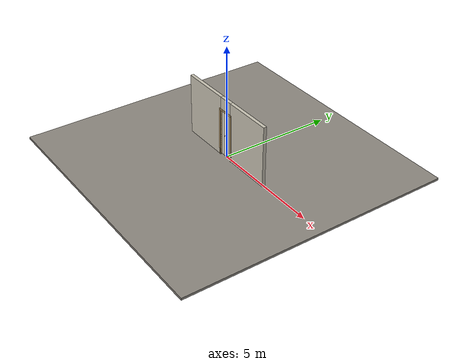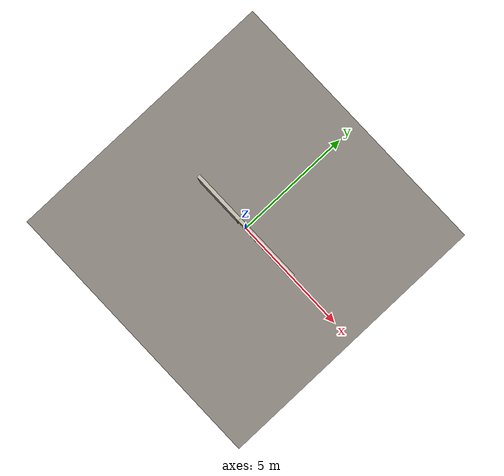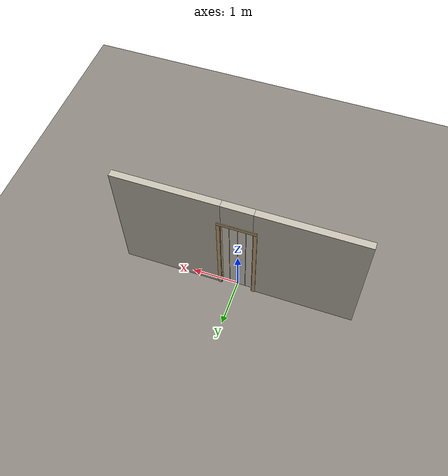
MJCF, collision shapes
<?xml version="1.0" ?>
<mujoco model="db0059_bifold_full">
  <compiler angle="radian" meshdir="../../hardware" texturedir="../../textures" autolimits="true" inertiafromgeom="false"/>
  <option timestep="0.002" integrator="implicitfast" cone="elliptic" impratio="10" noslip_iterations="3">
    <flag multiccd="enable"/>
  </option>
  <size memory="16M"/>
  <default>
    <geom condim="4" solref="0.005 1" solimp="0.95 0.99 0.001"/>
    <joint solreflimit="0.005 1" solimplimit="0.95 0.99 0.001"/>
    <tendon solreflimit="0.005 1"/>
    <equality solref="0.002 1"/>
  </default>
  <visual>
    <headlight ambient="0.4 0.4 0.4" diffuse="0.7 0.7 0.7" specular="0.2 0.2 0.2"/>
    <quality shadowsize="4096"/>
    <map znear="0.01" zfar="60"/>
  </visual>
  <asset>
    <mesh name="knob_13f7a2a65f" file="knob_13f7a2a65f.obj"/>
    <material name="mat_floor" rgba="0.55 0.53 0.5 1" specular="0.2" shininess="0.15" reflectance="0"/>
    <material name="mat_wall" rgba="0.78 0.76 0.7 1" specular="0.2" shininess="0.1" reflectance="0"/>
    <material name="mat_frame" rgba="0.82 0.7 0.5 1" specular="0.2" shininess="0.45" reflectance="0"/>
    <material name="mat_track" rgba="0.8 0.81 0.83 1" specular="0.8" shininess="0.6" reflectance="0.4"/>
    <material name="mat_hinge" rgba="0.65 0.66 0.68 1" specular="0.74" shininess="0.5" reflectance="0.36"/>
    <material name="mat_panel_0_0" rgba="0.9 0.88 0.82 1" specular="0.2" shininess="0.46" reflectance="0"/>
    <material name="mat_panel_0_0_louver" rgba="0.765 0.748 0.697 1" specular="0.2" shininess="0.4" reflectance="0"/>
    <material name="mat_panel_0_1" rgba="0.9 0.88 0.82 1" specular="0.2" shininess="0.46" reflectance="0"/>
    <material name="mat_panel_0_1_louver" rgba="0.765 0.748 0.697 1" specular="0.2" shininess="0.4" reflectance="0"/>
    <material name="mat_op_nickel_satin" rgba="0.72 0.7 0.66 1" specular="0.8" shininess="0.65" reflectance="0.4"/>
    <material name="mat_panel_1_0" rgba="0.9 0.88 0.82 1" specular="0.2" shininess="0.46" reflectance="0"/>
    <material name="mat_panel_1_0_louver" rgba="0.765 0.748 0.697 1" specular="0.2" shininess="0.4" reflectance="0"/>
    <material name="mat_panel_1_1" rgba="0.9 0.88 0.82 1" specular="0.2" shininess="0.46" reflectance="0"/>
    <material name="mat_panel_1_1_louver" rgba="0.765 0.748 0.697 1" specular="0.2" shininess="0.4" reflectance="0"/>
    <texture name="skybox" type="skybox" builtin="gradient" rgb1="0.6 0.7 0.85" rgb2="0.9 0.92 0.95" width="256" height="256"/>
  </asset>
  <worldbody>
    <light name="sun" pos="1.5 -2.5 4" dir="-0.3 0.5 -0.8" directional="true" diffuse="0.8 0.8 0.8" specular="0.3 0.3 0.3" castshadow="true"/>
    <light name="fill" pos="-1.5 2.5 3" dir="0.3 -0.5 -0.7" directional="true" diffuse="0.35 0.35 0.4" castshadow="false"/>
    <camera name="robot_view" pos="0 -2.581563 1.766338" xyaxes="1 0 0 0 0.26963 0.962964" fovy="52"/>
    <camera name="far_view" pos="0 2.581563 1.766338" xyaxes="-1 0 0 0 -0.26963 0.962964" fovy="52"/>
    <camera name="iso" pos="1.961988 -2.168513 2.179388" xyaxes="0.741536 0.670913 0 -0.242917 0.268487 0.932151" fovy="46"/>
    <camera name="detail_handle" pos="0.122925 -0.8475 1.28" xyaxes="0.97561 0.219512 0 -0.070934 0.315262 0.94635" fovy="38"/>
    <geom name="floor" type="box" size="6 6 0.05" pos="0 0 -0.05" material="mat_floor" group="0" contype="1" conaffinity="1" friction="0.8 0.005 0.0001" density="2400"/>
    <geom name="wall_left" type="box" size="1.09 0.0725 1.35" pos="-1.41 0 1.35" material="mat_wall" group="0" contype="1" conaffinity="1" friction="0.6 0.005 0.0001" density="800"/>
    <geom name="wall_right" type="box" size="1.09 0.0725 1.35" pos="1.41 0 1.35" material="mat_wall" group="0" contype="1" conaffinity="1" friction="0.6 0.005 0.0001" density="800"/>
    <geom name="wall_header" type="box" size="0.32 0.0725 0.3065" pos="0 0 2.3935" material="mat_wall" group="0" contype="1" conaffinity="1" friction="0.6 0.005 0.0001" density="800"/>
    <geom name="jamb_hinge" type="box" size="0.0095 0.0725 1.0435" pos="-0.3295 0 1.0435" material="mat_frame" group="0" contype="1" conaffinity="1" friction="0.6 0.005 0.0001" density="400"/>
    <geom name="jamb_strike" type="box" size="0.0095 0.0725 1.0435" pos="0.3295 0 1.0435" material="mat_frame" group="0" contype="1" conaffinity="1" friction="0.6 0.005 0.0001" density="400"/>
    <geom name="stud_strike" type="box" size="0.015 0.0725 1.0435" pos="0.354 0 1.0435" material="mat_wall" group="0" contype="1" conaffinity="1" friction="0.6 0.005 0.0001" density="500"/>
    <geom name="jamb_head" type="box" size="0.354 0.0725 0.0095" pos="0.015 0 2.0965" material="mat_frame" group="0" contype="1" conaffinity="1" friction="0.6 0.005 0.0001" density="400"/>
    <geom name="head_stud" type="box" size="0.354 0.0725 0.015" pos="0.015 0 2.121" material="mat_wall" group="0" contype="1" conaffinity="1" friction="0.6 0.005 0.0001" density="500"/>
    <geom name="casing_l_n" type="box" size="0.035 0.008 1.053" pos="-0.369 -0.0805 1.0435" material="mat_frame" group="2" contype="0" conaffinity="0" density="400"/>
    <geom name="casing_r_n" type="box" size="0.035 0.008 1.053" pos="0.369 -0.0805 1.0435" material="mat_frame" group="2" contype="0" conaffinity="0" density="400"/>
    <geom name="casing_h_n" type="box" size="0.404 0.008 0.035" pos="0 -0.0805 2.136" material="mat_frame" group="2" contype="0" conaffinity="0" density="400"/>
    <geom name="casing_l_p" type="box" size="0.035 0.008 1.053" pos="-0.369 0.0805 1.0435" material="mat_frame" group="2" contype="0" conaffinity="0" density="400"/>
    <geom name="casing_r_p" type="box" size="0.035 0.008 1.053" pos="0.369 0.0805 1.0435" material="mat_frame" group="2" contype="0" conaffinity="0" density="400"/>
    <geom name="casing_h_p" type="box" size="0.404 0.008 0.035" pos="0 0.0805 2.136" material="mat_frame" group="2" contype="0" conaffinity="0" density="400"/>
    <geom name="fold_track" type="box" size="0.32 0.02 0.015" pos="0 0 2.072" material="mat_track" group="1" contype="0" conaffinity="0" density="2700"/>
    <site name="approach_point" pos="0 -1.5 0" quat="1 0 0 0" size="0.05" rgba="0.2 0.9 0.2 0.5" group="4"/>
    <site name="goal_point" pos="0 1.5 0" quat="1 0 0 0" size="0.05" rgba="0.2 0.9 0.2 0.5" group="4"/>
    <site name="door_plane_center" pos="0 0 1.0435" quat="1 0 0 0" size="0.02" rgba="0.2 0.9 0.2 0.5" group="4"/>
    <body name="panel_0_0" pos="-0.32 0 0">
      <inertial pos="0.078703 0 1.050971" mass="2.145073" quat="0.500463 0.500463 0.499537 -0.499537" diaginertia="0.003791067 0.759519003 0.762877548"/>
      <joint name="panel_0_0_hinge" type="hinge" axis="0 0 -1" pos="0.035 0 0" limited="true" range="0 1.48353" damping="0.647388" frictionloss="0.936494" armature="0.02"/>
      <geom name="panel_0_0_slab" type="box" size="0.070645 0.0175 1.016" pos="0.079355 0 1.036" material="mat_panel_0_0" group="0" contype="1" conaffinity="1" friction="0.35 0.005 0.0001" density="1"/>
      <geom name="panel_0_0_louver_0" type="box" size="0.031084 0.002 0.026984" pos="0.079355 0 1.102339" quat="0.953717 0.300706 0 0" material="mat_panel_0_0_louver" group="1" contype="0" conaffinity="0" density="1"/>
      <geom name="panel_0_0_louver_1" type="box" size="0.031084 0.002 0.026984" pos="0.079355 0 1.153736" quat="0.953717 0.300706 0 0" material="mat_panel_0_0_louver" group="1" contype="0" conaffinity="0" density="1"/>
      <geom name="panel_0_0_louver_2" type="box" size="0.031084 0.002 0.026984" pos="0.079355 0 1.205134" quat="0.953717 0.300706 0 0" material="mat_panel_0_0_louver" group="1" contype="0" conaffinity="0" density="1"/>
      <geom name="panel_0_0_louver_3" type="box" size="0.031084 0.002 0.026984" pos="0.079355 0 1.256532" quat="0.953717 0.300706 0 0" material="mat_panel_0_0_louver" group="1" contype="0" conaffinity="0" density="1"/>
      <geom name="panel_0_0_louver_4" type="box" size="0.031084 0.002 0.026984" pos="0.079355 0 1.307929" quat="0.953717 0.300706 0 0" material="mat_panel_0_0_louver" group="1" contype="0" conaffinity="0" density="1"/>
      <geom name="panel_0_0_louver_5" type="box" size="0.031084 0.002 0.026984" pos="0.079355 0 1.359327" quat="0.953717 0.300706 0 0" material="mat_panel_0_0_louver" group="1" contype="0" conaffinity="0" density="1"/>
      <geom name="panel_0_0_louver_6" type="box" size="0.031084 0.002 0.026984" pos="0.079355 0 1.410725" quat="0.953717 0.300706 0 0" material="mat_panel_0_0_louver" group="1" contype="0" conaffinity="0" density="1"/>
      <geom name="panel_0_0_louver_7" type="box" size="0.031084 0.002 0.026984" pos="0.079355 0 1.462122" quat="0.953717 0.300706 0 0" material="mat_panel_0_0_louver" group="1" contype="0" conaffinity="0" density="1"/>
      <geom name="panel_0_0_louver_8" type="box" size="0.031084 0.002 0.026984" pos="0.079355 0 1.51352" quat="0.953717 0.300706 0 0" material="mat_panel_0_0_louver" group="1" contype="0" conaffinity="0" density="1"/>
      <geom name="panel_0_0_louver_9" type="box" size="0.031084 0.002 0.026984" pos="0.079355 0 1.564918" quat="0.953717 0.300706 0 0" material="mat_panel_0_0_louver" group="1" contype="0" conaffinity="0" density="1"/>
      <geom name="panel_0_0_louver_10" type="box" size="0.031084 0.002 0.026984" pos="0.079355 0 1.616315" quat="0.953717 0.300706 0 0" material="mat_panel_0_0_louver" group="1" contype="0" conaffinity="0" density="1"/>
      <geom name="panel_0_0_louver_11" type="box" size="0.031084 0.002 0.026984" pos="0.079355 0 1.667713" quat="0.953717 0.300706 0 0" material="mat_panel_0_0_louver" group="1" contype="0" conaffinity="0" density="1"/>
      <geom name="panel_0_0_louver_12" type="box" size="0.031084 0.002 0.026984" pos="0.079355 0 1.719111" quat="0.953717 0.300706 0 0" material="mat_panel_0_0_louver" group="1" contype="0" conaffinity="0" density="1"/>
      <geom name="panel_0_0_louver_13" type="box" size="0.031084 0.002 0.026984" pos="0.079355 0 1.770508" quat="0.953717 0.300706 0 0" material="mat_panel_0_0_louver" group="1" contype="0" conaffinity="0" density="1"/>
      <geom name="panel_0_0_louver_14" type="box" size="0.031084 0.002 0.026984" pos="0.079355 0 1.821906" quat="0.953717 0.300706 0 0" material="mat_panel_0_0_louver" group="1" contype="0" conaffinity="0" density="1"/>
      <geom name="panel_0_0_louver_15" type="box" size="0.031084 0.002 0.026984" pos="0.079355 0 1.873304" quat="0.953717 0.300706 0 0" material="mat_panel_0_0_louver" group="1" contype="0" conaffinity="0" density="1"/>
      <geom name="panel_0_0_louver_16" type="box" size="0.031084 0.002 0.026984" pos="0.079355 0 1.924701" quat="0.953717 0.300706 0 0" material="mat_panel_0_0_louver" group="1" contype="0" conaffinity="0" density="1"/>
      <geom name="panel_0_0_pivot_pin" type="cylinder" size="0.008 0.0105" pos="0.035 0 2.0525" material="mat_hinge" group="1" contype="0" conaffinity="0" density="7850"/>
      <body name="panel_0_1" pos="0.152 0 0">
        <inertial pos="0.014841 0.010568 1.031551" mass="2.448742" quat="0.596594 0.378605 -0.597198 0.379591" diaginertia="0.004344929 0.722160542 0.726364202"/>
        <joint name="panel_0_1_hinge" type="hinge" axis="0 0 -1" pos="0 0.0175 0" limited="true" range="-3.141593 0" damping="0.2" frictionloss="0.1" armature="0.005"/>
        <geom name="panel_0_1_slab" type="box" size="0.079462 0.0175 1.016" pos="0.081462 0 1.036" material="mat_panel_0_1" group="0" contype="1" conaffinity="1" friction="0.35 0.005 0.0001" density="1"/>
        <geom name="panel_0_1_louver_0" type="box" size="0.034963 0.002 0.026984" pos="0.081462 0 1.102339" quat="0.953717 0.300706 0 0" material="mat_panel_0_1_louver" group="1" contype="0" conaffinity="0" density="1"/>
        <geom name="panel_0_1_louver_1" type="box" size="0.034963 0.002 0.026984" pos="0.081462 0 1.153736" quat="0.953717 0.300706 0 0" material="mat_panel_0_1_louver" group="1" contype="0" conaffinity="0" density="1"/>
        <geom name="panel_0_1_louver_2" type="box" size="0.034963 0.002 0.026984" pos="0.081462 0 1.205134" quat="0.953717 0.300706 0 0" material="mat_panel_0_1_louver" group="1" contype="0" conaffinity="0" density="1"/>
        <geom name="panel_0_1_louver_3" type="box" size="0.034963 0.002 0.026984" pos="0.081462 0 1.256532" quat="0.953717 0.300706 0 0" material="mat_panel_0_1_louver" group="1" contype="0" conaffinity="0" density="1"/>
        <geom name="panel_0_1_louver_4" type="box" size="0.034963 0.002 0.026984" pos="0.081462 0 1.307929" quat="0.953717 0.300706 0 0" material="mat_panel_0_1_louver" group="1" contype="0" conaffinity="0" density="1"/>
        <geom name="panel_0_1_louver_5" type="box" size="0.034963 0.002 0.026984" pos="0.081462 0 1.359327" quat="0.953717 0.300706 0 0" material="mat_panel_0_1_louver" group="1" contype="0" conaffinity="0" density="1"/>
        <geom name="panel_0_1_louver_6" type="box" size="0.034963 0.002 0.026984" pos="0.081462 0 1.410725" quat="0.953717 0.300706 0 0" material="mat_panel_0_1_louver" group="1" contype="0" conaffinity="0" density="1"/>
        <geom name="panel_0_1_louver_7" type="box" size="0.034963 0.002 0.026984" pos="0.081462 0 1.462122" quat="0.953717 0.300706 0 0" material="mat_panel_0_1_louver" group="1" contype="0" conaffinity="0" density="1"/>
        <geom name="panel_0_1_louver_8" type="box" size="0.034963 0.002 0.026984" pos="0.081462 0 1.51352" quat="0.953717 0.300706 0 0" material="mat_panel_0_1_louver" group="1" contype="0" conaffinity="0" density="1"/>
        <geom name="panel_0_1_louver_9" type="box" size="0.034963 0.002 0.026984" pos="0.081462 0 1.564918" quat="0.953717 0.300706 0 0" material="mat_panel_0_1_louver" group="1" contype="0" conaffinity="0" density="1"/>
        <geom name="panel_0_1_louver_10" type="box" size="0.034963 0.002 0.026984" pos="0.081462 0 1.616315" quat="0.953717 0.300706 0 0" material="mat_panel_0_1_louver" group="1" contype="0" conaffinity="0" density="1"/>
        <geom name="panel_0_1_louver_11" type="box" size="0.034963 0.002 0.026984" pos="0.081462 0 1.667713" quat="0.953717 0.300706 0 0" material="mat_panel_0_1_louver" group="1" contype="0" conaffinity="0" density="1"/>
        <geom name="panel_0_1_louver_12" type="box" size="0.034963 0.002 0.026984" pos="0.081462 0 1.719111" quat="0.953717 0.300706 0 0" material="mat_panel_0_1_louver" group="1" contype="0" conaffinity="0" density="1"/>
        <geom name="panel_0_1_louver_13" type="box" size="0.034963 0.002 0.026984" pos="0.081462 0 1.770508" quat="0.953717 0.300706 0 0" material="mat_panel_0_1_louver" group="1" contype="0" conaffinity="0" density="1"/>
        <geom name="panel_0_1_louver_14" type="box" size="0.034963 0.002 0.026984" pos="0.081462 0 1.821906" quat="0.953717 0.300706 0 0" material="mat_panel_0_1_louver" group="1" contype="0" conaffinity="0" density="1"/>
        <geom name="panel_0_1_louver_15" type="box" size="0.034963 0.002 0.026984" pos="0.081462 0 1.873304" quat="0.953717 0.300706 0 0" material="mat_panel_0_1_louver" group="1" contype="0" conaffinity="0" density="1"/>
        <geom name="panel_0_1_louver_16" type="box" size="0.034963 0.002 0.026984" pos="0.081462 0 1.924701" quat="0.953717 0.300706 0 0" material="mat_panel_0_1_louver" group="1" contype="0" conaffinity="0" density="1"/>
        <geom name="panel_0_1_knuckle" type="cylinder" size="0.0045 1.006" pos="0 0.0175 1.036" material="mat_hinge" group="1" contype="0" conaffinity="0" density="7850"/>
        <geom name="panel_0_1_knob" type="mesh" mesh="knob_13f7a2a65f" pos="0.110925 -0.0175 1" quat="0.707107 0.707107 0 0" material="mat_op_nickel_satin" group="1" contype="0" conaffinity="0" density="3000"/>
        <geom name="panel_0_1_knob_col" type="sphere" size="0.016" pos="0.110925 -0.0475 1" material="mat_op_nickel_satin" group="0" contype="1" conaffinity="1" friction="0.6 0.005 0.0001" density="3000"/>
        <geom name="panel_0_1_knob_rose" type="cylinder" size="0.022 0.005" pos="0.110925 -0.0225 1" quat="0.707107 -0.707107 0 0" material="mat_op_nickel_satin" group="1" contype="0" conaffinity="0" density="3000"/>
        <site name="panel_0_1_grip" pos="0.110925 -0.0475 1" quat="1 0 0 0" size="0.012" rgba="0.2 0.9 0.2 0.5" group="4"/>
      </body>
    </body>
    <body name="panel_1_0" pos="0.32 0 0">
      <inertial pos="-0.078703 0 1.050971" mass="2.145073" quat="0.500463 -0.500463 -0.499537 -0.499537" diaginertia="0.003791067 0.759519003 0.762877548"/>
      <joint name="panel_1_0_hinge" type="hinge" axis="0 0 1" pos="-0.035 0 0" limited="true" range="0 1.48353" damping="0.647388" frictionloss="0.936494" armature="0.02"/>
      <geom name="panel_1_0_slab" type="box" size="0.070645 0.0175 1.016" pos="-0.079355 0 1.036" material="mat_panel_1_0" group="0" contype="1" conaffinity="1" friction="0.35 0.005 0.0001" density="1"/>
      <geom name="panel_1_0_louver_0" type="box" size="0.031084 0.002 0.026984" pos="-0.079355 0 1.102339" quat="0.953717 0.300706 0 0" material="mat_panel_1_0_louver" group="1" contype="0" conaffinity="0" density="1"/>
      <geom name="panel_1_0_louver_1" type="box" size="0.031084 0.002 0.026984" pos="-0.079355 0 1.153736" quat="0.953717 0.300706 0 0" material="mat_panel_1_0_louver" group="1" contype="0" conaffinity="0" density="1"/>
      <geom name="panel_1_0_louver_2" type="box" size="0.031084 0.002 0.026984" pos="-0.079355 0 1.205134" quat="0.953717 0.300706 0 0" material="mat_panel_1_0_louver" group="1" contype="0" conaffinity="0" density="1"/>
      <geom name="panel_1_0_louver_3" type="box" size="0.031084 0.002 0.026984" pos="-0.079355 0 1.256532" quat="0.953717 0.300706 0 0" material="mat_panel_1_0_louver" group="1" contype="0" conaffinity="0" density="1"/>
      <geom name="panel_1_0_louver_4" type="box" size="0.031084 0.002 0.026984" pos="-0.079355 0 1.307929" quat="0.953717 0.300706 0 0" material="mat_panel_1_0_louver" group="1" contype="0" conaffinity="0" density="1"/>
      <geom name="panel_1_0_louver_5" type="box" size="0.031084 0.002 0.026984" pos="-0.079355 0 1.359327" quat="0.953717 0.300706 0 0" material="mat_panel_1_0_louver" group="1" contype="0" conaffinity="0" density="1"/>
      <geom name="panel_1_0_louver_6" type="box" size="0.031084 0.002 0.026984" pos="-0.079355 0 1.410725" quat="0.953717 0.300706 0 0" material="mat_panel_1_0_louver" group="1" contype="0" conaffinity="0" density="1"/>
      <geom name="panel_1_0_louver_7" type="box" size="0.031084 0.002 0.026984" pos="-0.079355 0 1.462122" quat="0.953717 0.300706 0 0" material="mat_panel_1_0_louver" group="1" contype="0" conaffinity="0" density="1"/>
      <geom name="panel_1_0_louver_8" type="box" size="0.031084 0.002 0.026984" pos="-0.079355 0 1.51352" quat="0.953717 0.300706 0 0" material="mat_panel_1_0_louver" group="1" contype="0" conaffinity="0" density="1"/>
      <geom name="panel_1_0_louver_9" type="box" size="0.031084 0.002 0.026984" pos="-0.079355 0 1.564918" quat="0.953717 0.300706 0 0" material="mat_panel_1_0_louver" group="1" contype="0" conaffinity="0" density="1"/>
      <geom name="panel_1_0_louver_10" type="box" size="0.031084 0.002 0.026984" pos="-0.079355 0 1.616315" quat="0.953717 0.300706 0 0" material="mat_panel_1_0_louver" group="1" contype="0" conaffinity="0" density="1"/>
      <geom name="panel_1_0_louver_11" type="box" size="0.031084 0.002 0.026984" pos="-0.079355 0 1.667713" quat="0.953717 0.300706 0 0" material="mat_panel_1_0_louver" group="1" contype="0" conaffinity="0" density="1"/>
      <geom name="panel_1_0_louver_12" type="box" size="0.031084 0.002 0.026984" pos="-0.079355 0 1.719111" quat="0.953717 0.300706 0 0" material="mat_panel_1_0_louver" group="1" contype="0" conaffinity="0" density="1"/>
      <geom name="panel_1_0_louver_13" type="box" size="0.031084 0.002 0.026984" pos="-0.079355 0 1.770508" quat="0.953717 0.300706 0 0" material="mat_panel_1_0_louver" group="1" contype="0" conaffinity="0" density="1"/>
      <geom name="panel_1_0_louver_14" type="box" size="0.031084 0.002 0.026984" pos="-0.079355 0 1.821906" quat="0.953717 0.300706 0 0" material="mat_panel_1_0_louver" group="1" contype="0" conaffinity="0" density="1"/>
      <geom name="panel_1_0_louver_15" type="box" size="0.031084 0.002 0.026984" pos="-0.079355 0 1.873304" quat="0.953717 0.300706 0 0" material="mat_panel_1_0_louver" group="1" contype="0" conaffinity="0" density="1"/>
      <geom name="panel_1_0_louver_16" type="box" size="0.031084 0.002 0.026984" pos="-0.079355 0 1.924701" quat="0.953717 0.300706 0 0" material="mat_panel_1_0_louver" group="1" contype="0" conaffinity="0" density="1"/>
      <geom name="panel_1_0_pivot_pin" type="cylinder" size="0.008 0.0105" pos="-0.035 0 2.0525" material="mat_hinge" group="1" contype="0" conaffinity="0" density="7850"/>
      <body name="panel_1_1" pos="-0.152 0 0">
        <inertial pos="-0.014841 0.010568 1.031551" mass="2.448742" quat="0.379591 0.597198 -0.378605 0.596594" diaginertia="0.004344929 0.722160542 0.726364202"/>
        <joint name="panel_1_1_hinge" type="hinge" axis="0 0 1" pos="0 0.0175 0" limited="true" range="-3.141593 0" damping="0.2" frictionloss="0.1" armature="0.005"/>
        <geom name="panel_1_1_slab" type="box" size="0.079462 0.0175 1.016" pos="-0.081462 0 1.036" material="mat_panel_1_1" group="0" contype="1" conaffinity="1" friction="0.35 0.005 0.0001" density="1"/>
        <geom name="panel_1_1_louver_0" type="box" size="0.034963 0.002 0.026984" pos="-0.081462 0 1.102339" quat="0.953717 0.300706 0 0" material="mat_panel_1_1_louver" group="1" contype="0" conaffinity="0" density="1"/>
        <geom name="panel_1_1_louver_1" type="box" size="0.034963 0.002 0.026984" pos="-0.081462 0 1.153736" quat="0.953717 0.300706 0 0" material="mat_panel_1_1_louver" group="1" contype="0" conaffinity="0" density="1"/>
        <geom name="panel_1_1_louver_2" type="box" size="0.034963 0.002 0.026984" pos="-0.081462 0 1.205134" quat="0.953717 0.300706 0 0" material="mat_panel_1_1_louver" group="1" contype="0" conaffinity="0" density="1"/>
        <geom name="panel_1_1_louver_3" type="box" size="0.034963 0.002 0.026984" pos="-0.081462 0 1.256532" quat="0.953717 0.300706 0 0" material="mat_panel_1_1_louver" group="1" contype="0" conaffinity="0" density="1"/>
        <geom name="panel_1_1_louver_4" type="box" size="0.034963 0.002 0.026984" pos="-0.081462 0 1.307929" quat="0.953717 0.300706 0 0" material="mat_panel_1_1_louver" group="1" contype="0" conaffinity="0" density="1"/>
        <geom name="panel_1_1_louver_5" type="box" size="0.034963 0.002 0.026984" pos="-0.081462 0 1.359327" quat="0.953717 0.300706 0 0" material="mat_panel_1_1_louver" group="1" contype="0" conaffinity="0" density="1"/>
        <geom name="panel_1_1_louver_6" type="box" size="0.034963 0.002 0.026984" pos="-0.081462 0 1.410725" quat="0.953717 0.300706 0 0" material="mat_panel_1_1_louver" group="1" contype="0" conaffinity="0" density="1"/>
        <geom name="panel_1_1_louver_7" type="box" size="0.034963 0.002 0.026984" pos="-0.081462 0 1.462122" quat="0.953717 0.300706 0 0" material="mat_panel_1_1_louver" group="1" contype="0" conaffinity="0" density="1"/>
        <geom name="panel_1_1_louver_8" type="box" size="0.034963 0.002 0.026984" pos="-0.081462 0 1.51352" quat="0.953717 0.300706 0 0" material="mat_panel_1_1_louver" group="1" contype="0" conaffinity="0" density="1"/>
        <geom name="panel_1_1_louver_9" type="box" size="0.034963 0.002 0.026984" pos="-0.081462 0 1.564918" quat="0.953717 0.300706 0 0" material="mat_panel_1_1_louver" group="1" contype="0" conaffinity="0" density="1"/>
        <geom name="panel_1_1_louver_10" type="box" size="0.034963 0.002 0.026984" pos="-0.081462 0 1.616315" quat="0.953717 0.300706 0 0" material="mat_panel_1_1_louver" group="1" contype="0" conaffinity="0" density="1"/>
        <geom name="panel_1_1_louver_11" type="box" size="0.034963 0.002 0.026984" pos="-0.081462 0 1.667713" quat="0.953717 0.300706 0 0" material="mat_panel_1_1_louver" group="1" contype="0" conaffinity="0" density="1"/>
        <geom name="panel_1_1_louver_12" type="box" size="0.034963 0.002 0.026984" pos="-0.081462 0 1.719111" quat="0.953717 0.300706 0 0" material="mat_panel_1_1_louver" group="1" contype="0" conaffinity="0" density="1"/>
        <geom name="panel_1_1_louver_13" type="box" size="0.034963 0.002 0.026984" pos="-0.081462 0 1.770508" quat="0.953717 0.300706 0 0" material="mat_panel_1_1_louver" group="1" contype="0" conaffinity="0" density="1"/>
        <geom name="panel_1_1_louver_14" type="box" size="0.034963 0.002 0.026984" pos="-0.081462 0 1.821906" quat="0.953717 0.300706 0 0" material="mat_panel_1_1_louver" group="1" contype="0" conaffinity="0" density="1"/>
        <geom name="panel_1_1_louver_15" type="box" size="0.034963 0.002 0.026984" pos="-0.081462 0 1.873304" quat="0.953717 0.300706 0 0" material="mat_panel_1_1_louver" group="1" contype="0" conaffinity="0" density="1"/>
        <geom name="panel_1_1_louver_16" type="box" size="0.034963 0.002 0.026984" pos="-0.081462 0 1.924701" quat="0.953717 0.300706 0 0" material="mat_panel_1_1_louver" group="1" contype="0" conaffinity="0" density="1"/>
        <geom name="panel_1_1_knuckle" type="cylinder" size="0.0045 1.006" pos="0 0.0175 1.036" material="mat_hinge" group="1" contype="0" conaffinity="0" density="7850"/>
        <geom name="panel_1_1_knob" type="mesh" mesh="knob_13f7a2a65f" pos="-0.110925 -0.0175 1" quat="0 0 -0.707107 0.707107" material="mat_op_nickel_satin" group="1" contype="0" conaffinity="0" density="3000"/>
        <geom name="panel_1_1_knob_col" type="sphere" size="0.016" pos="-0.110925 -0.0475 1" material="mat_op_nickel_satin" group="0" contype="1" conaffinity="1" friction="0.6 0.005 0.0001" density="3000"/>
        <geom name="panel_1_1_knob_rose" type="cylinder" size="0.022 0.005" pos="-0.110925 -0.0225 1" quat="0.707107 -0.707107 0 0" material="mat_op_nickel_satin" group="1" contype="0" conaffinity="0" density="3000"/>
        <site name="panel_1_1_grip" pos="-0.110925 -0.0475 1" quat="1 0 0 0" size="0.012" rgba="0.2 0.9 0.2 0.5" group="4"/>
      </body>
    </body>
  </worldbody>
  <equality>
    <joint name="panel_0_1_couple" joint1="panel_0_1_hinge" joint2="panel_0_0_hinge" polycoef="0 -2 0 0 0" active="true"/>
    <joint name="panel_1_1_couple" joint1="panel_1_1_hinge" joint2="panel_1_0_hinge" polycoef="0 -2 0 0 0" active="true"/>
  </equality>
  <sensor>
    <jointpos name="panel_0_0_hinge_pos" joint="panel_0_0_hinge"/>
    <jointvel name="panel_0_0_hinge_vel" joint="panel_0_0_hinge"/>
    <jointpos name="panel_0_1_hinge_pos" joint="panel_0_1_hinge"/>
    <jointvel name="panel_0_1_hinge_vel" joint="panel_0_1_hinge"/>
    <jointpos name="panel_1_0_hinge_pos" joint="panel_1_0_hinge"/>
    <jointvel name="panel_1_0_hinge_vel" joint="panel_1_0_hinge"/>
    <jointpos name="panel_1_1_hinge_pos" joint="panel_1_1_hinge"/>
    <jointvel name="panel_1_1_hinge_vel" joint="panel_1_1_hinge"/>
  </sensor>
</mujoco>
